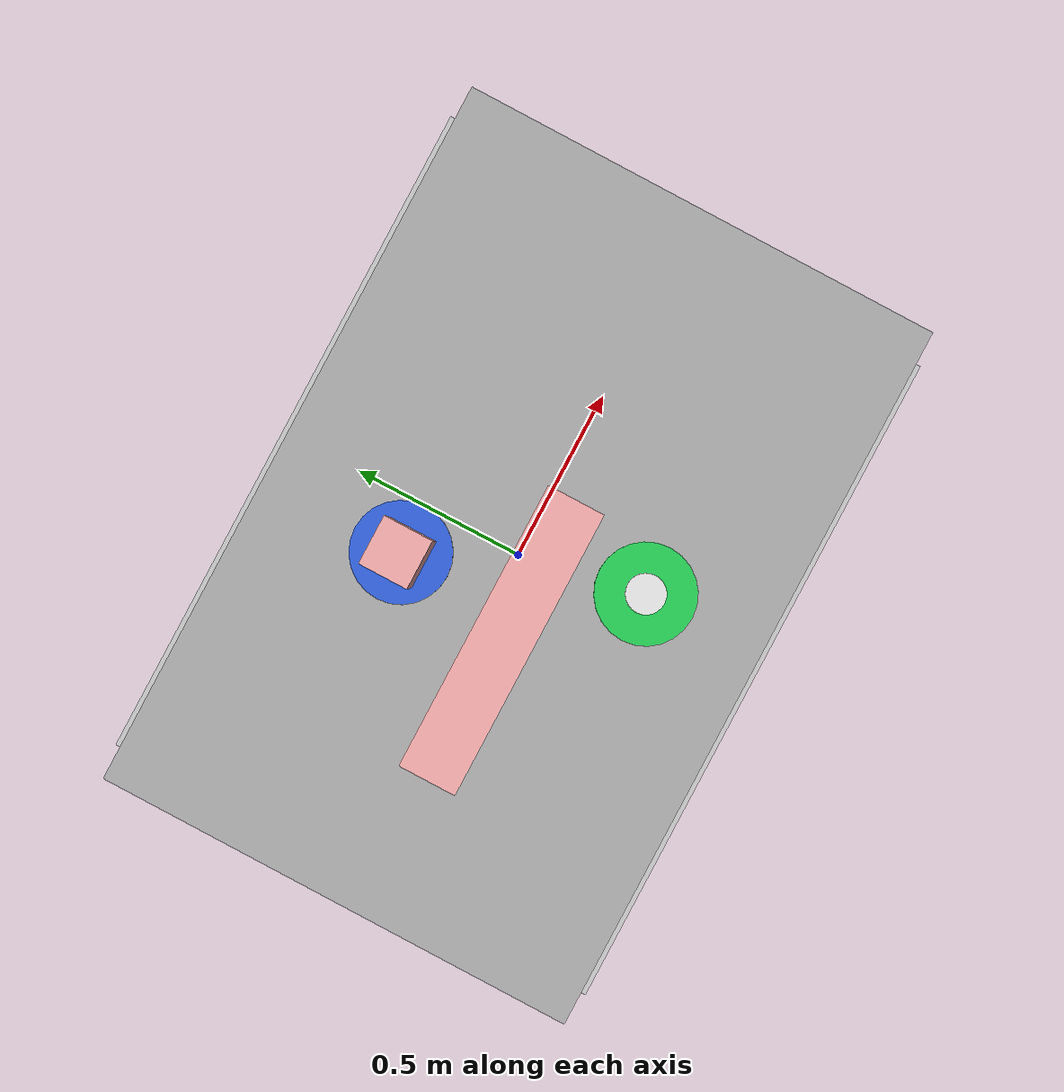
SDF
<?xml version="1.0"?>
<sdf version="1.6">
  <world name="warehouse">

    <!-- Physics & System Plugins -->
    <plugin filename="gz-sim-physics-system"
            name="gz::sim::systems::Physics"/>
    <plugin filename="gz-sim-scene-broadcaster-system"
            name="gz::sim::systems::SceneBroadcaster"/>
    <plugin filename="gz-sim-user-commands-system"
            name="gz::sim::systems::UserCommands"/>
    <plugin filename="gz-sim-sensors-system"
            name="gz::sim::systems::Sensors">
      <render_engine>ogre2</render_engine>
    </plugin>

    <!-- Lighting -->
    <light type="directional" name="sun">
      <cast_shadows>false</cast_shadows>
      <pose>3.5 3.5 12 0 0 0</pose>
      <diffuse>0.9 0.9 0.9 1</diffuse>
      <specular>0.3 0.3 0.3 1</specular>
      <direction>-0.3 0.2 -1</direction>
      <attenuation>
        <range>1000</range>
        <constant>0.9</constant>
        <linear>0.01</linear>
        <quadratic>0.001</quadratic>
      </attenuation>
    </light>

    <!-- Ambient Fill Light for Even Illumination Across All Rooms -->
    <light type="directional" name="ambient_fill">
      <cast_shadows>false</cast_shadows>
      <pose>3.5 3.5 10 0 0 0</pose>
      <diffuse>0.5 0.5 0.5 1</diffuse>
      <specular>0.1 0.1 0.1 1</specular>
      <direction>0.3 -0.2 -1</direction>
    </light>

    <!-- Ground Plane -->
    <model name="ground_plane">
      <static>true</static>
      <link name="link">
        <collision name="collision">
          <geometry>
            <plane>
              <normal>0 0 1</normal>
            </plane>
          </geometry>
        </collision>
        <visual name="visual">
          <geometry>
            <plane>
              <normal>0 0 1</normal>
              <size>30 30</size>
            </plane>
          </geometry>
          <material>
            <ambient>0.82 0.82 0.82 1</ambient>
            <diffuse>0.82 0.82 0.82 1</diffuse>
            <specular>0.3 0.3 0.3 1</specular>
          </material>
        </visual>
      </link>
    </model>

    <model name="table">
      <static>true</static>
      <pose>0 0 0.475 0 0 0</pose>
      <link name="link">
        <collision name="collision">
          <geometry>
            <box>
              <size>1.5 1.0 0.95</size>
            </box>
          </geometry>
          <surface>
            <friction>
              <ode>
                <mu>1.0</mu>
                <mu2>1.0</mu2>
              </ode>
            </friction>
          </surface>
        </collision>
        <visual name="visual">
          <geometry>
            <box>
              <size>1.5 1.0 0.95</size>
            </box>
          </geometry>
          <material name="grey">
            <ambient>0.7 0.7 0.7 1</ambient>
            <diffuse>0.7 0.7 0.7 1</diffuse>
            <specular>0.3 0.3 0.3 1</specular>
          </material>
        </visual>
      </link>
    </model>

    <model name="target_box">
      <static>false</static>
      <pose>-0.10 0.2 1.0 0 0 0</pose>
      <link name="link">
        <inertial>
          <mass>0.05</mass>
          <inertia>
            <ixx>0.00008333</ixx>
            <ixy>0</ixy>
            <ixz>0</ixz>
            <iyy>0.00008333</iyy>
            <iyz>0</iyz>
            <izz>0.00008333</izz>
          </inertia>
        </inertial>
        <collision name="collision">
          <geometry>
            <box>
              <size>0.1 0.1 0.1</size>
            </box>
          </geometry>
          <surface>
            <friction>
              <ode>
                <mu>1.5</mu>
                <mu2>1.5</mu2>
              </ode>
            </friction>
            <contact>
              <ode>
                <kp>1000000.0</kp>
                <kd>1.0</kd>
                <min_depth>0.001</min_depth>
                <max_vel>0.1</max_vel>
              </ode>
            </contact>
          </surface>
        </collision>
        <visual name="visual">
          <geometry>
            <box>
              <size>0.1 0.1 0.1</size>
            </box>
          </geometry>
          <material name="grey">
            <ambient>1.0 0.7 0.7 1</ambient>
            <diffuse>1.0 0.7 0.7 1</diffuse>
            <specular>0.3 0.3 0.3 1</specular>
          </material>
        </visual>
      </link>
    </model>

    <model name="obstacle">
      <static>True</static>
      <pose>-0.13 -0.04 1.00 0 0 0</pose>
      <link name="link">
        <collision name="collision">
          <geometry>
            <box>
              <size>0.5 0.1 0.65</size>
            </box>
          </geometry>
        </collision>
        <visual name="visual">
          <geometry>
            <box>
              <size>0.5 0.1 0.65</size>
            </box>
          </geometry>
          <material name="grey">
            <ambient>1.0 0.7 0.7 1</ambient>
            <diffuse>1.0 0.7 0.7 1</diffuse>
            <specular>0.3 0.3 0.3 1</specular>
          </material>
        </visual>
      </link>
    </model>

    <model name="spawn_marker">
      <static>true</static>
      <pose>-0.10 0.2 0.95 0 0 0</pose>
      <link name="link">
        <visual name="outer_ring">
          <geometry>
            <cylinder>
              <radius>0.1</radius>
              <length>0.01</length>
            </cylinder>
          </geometry>
          <material>
            <ambient>0.2 0.2 0.8 1</ambient>
            <diffuse>0.2 0.4 0.9 1</diffuse>
          </material>
        </visual>
        <visual name="inner_ring">
          <pose>0 0 0.002 0 0 0</pose>
          <geometry>
            <cylinder>
              <radius>0.04</radius>
              <length>0.01</length>
            </cylinder>
          </geometry>
          <material>
            <ambient>0.95 0.95 0.95 1</ambient>
            <diffuse>0.95 0.95 0.95 1</diffuse>
          </material>
        </visual>
      </link>
    </model>

    <model name="destined_marker">
      <static>true</static>
      <pose>0.05 -0.25 0.95 0 0 0</pose>
      <link name="link">
        <visual name="outer_ring">
          <geometry>
            <cylinder>
              <radius>0.1</radius>
              <length>0.01</length>
            </cylinder>
          </geometry>
          <material>
            <ambient>0.1 0.7 0.3 1</ambient>
            <diffuse>0.15 0.85 0.35 1</diffuse>
          </material>
        </visual>
        <visual name="inner_ring">
          <pose>0 0 0.002 0 0 0</pose>
          <geometry>
            <cylinder>
              <radius>0.04</radius>
              <length>0.01</length>
            </cylinder>
          </geometry>
          <material>
            <ambient>0.95 0.95 0.95 1</ambient>
            <diffuse>0.95 0.95 0.95 1</diffuse>
          </material>
        </visual>
      </link>
    </model>

  </world>
</sdf>
